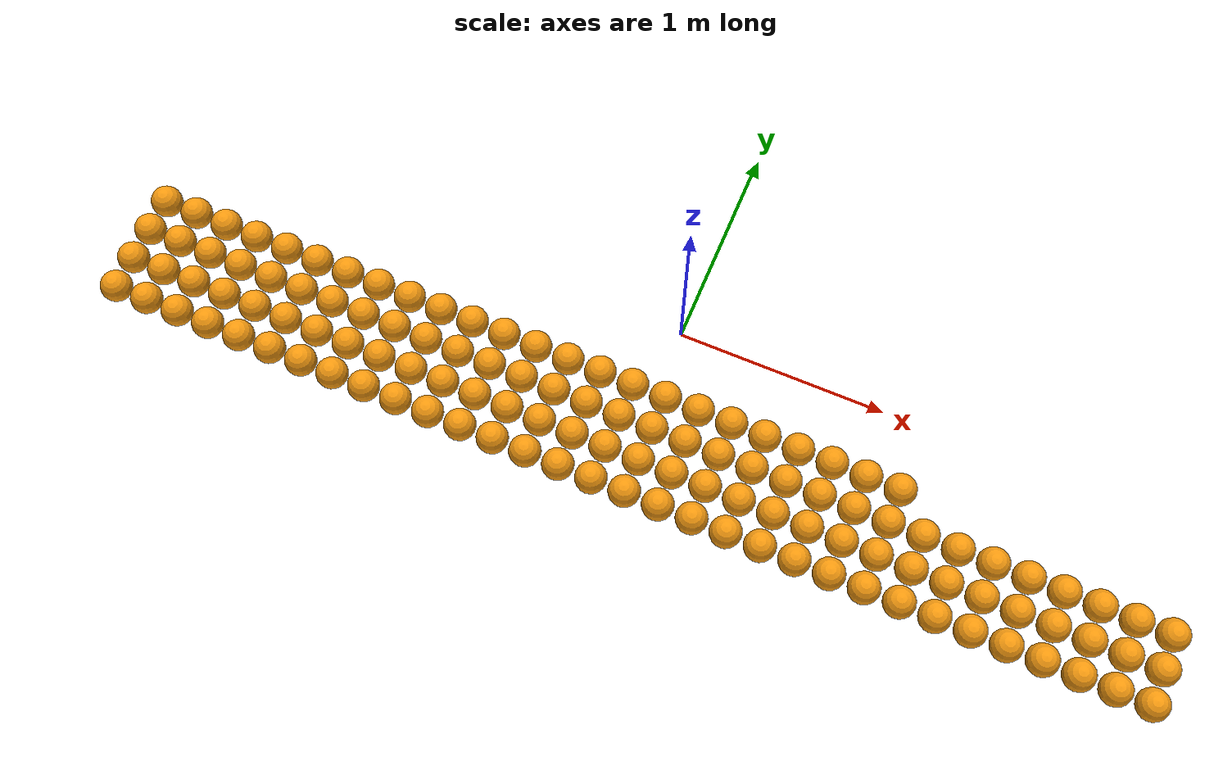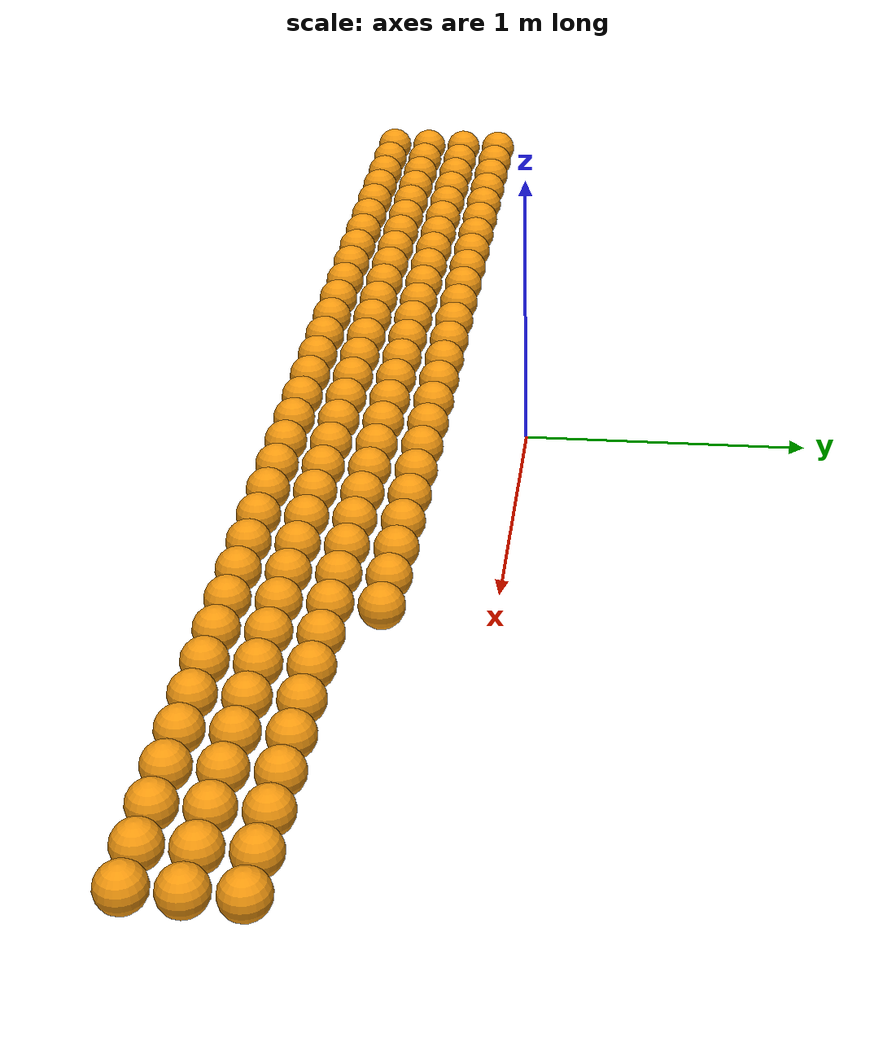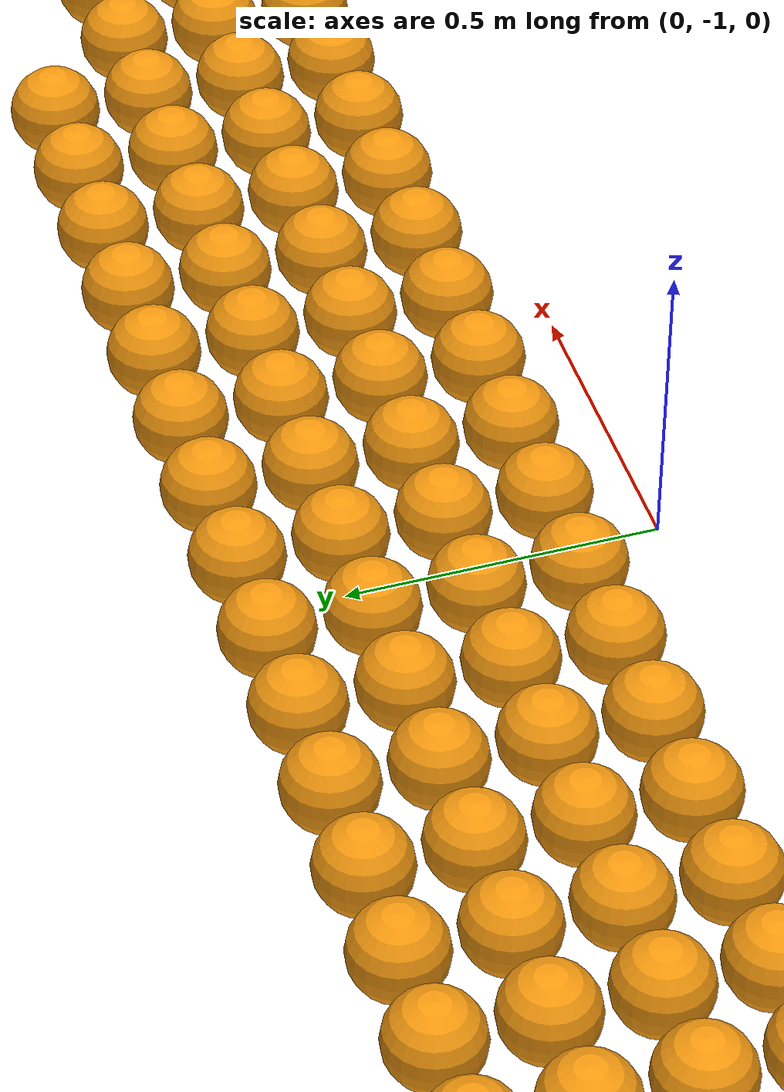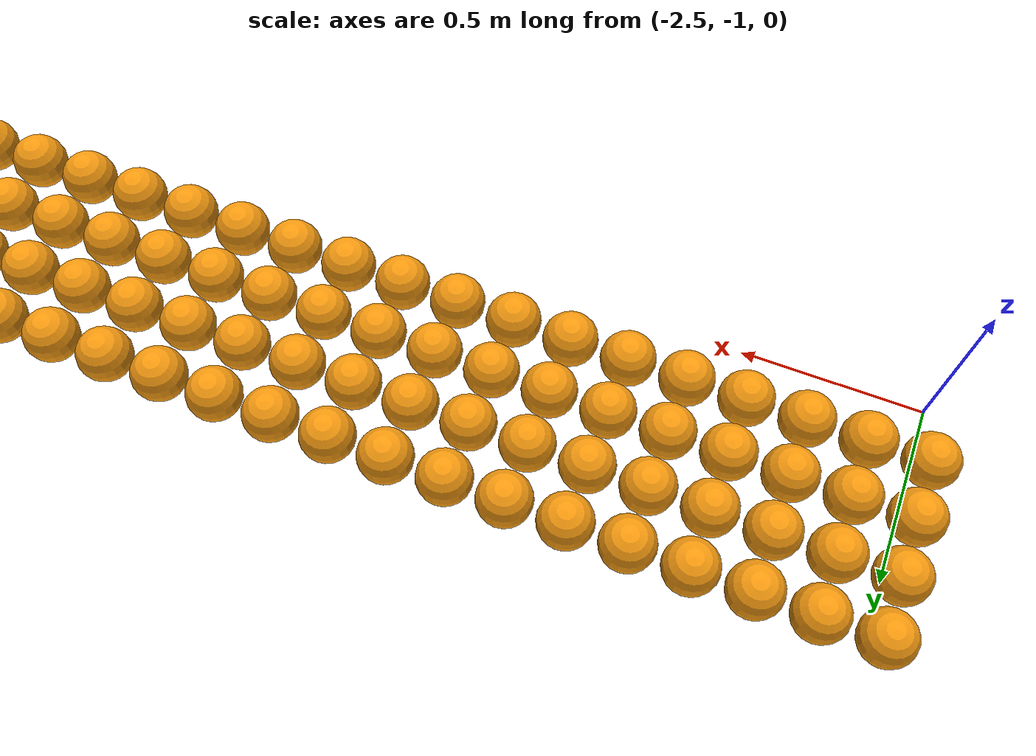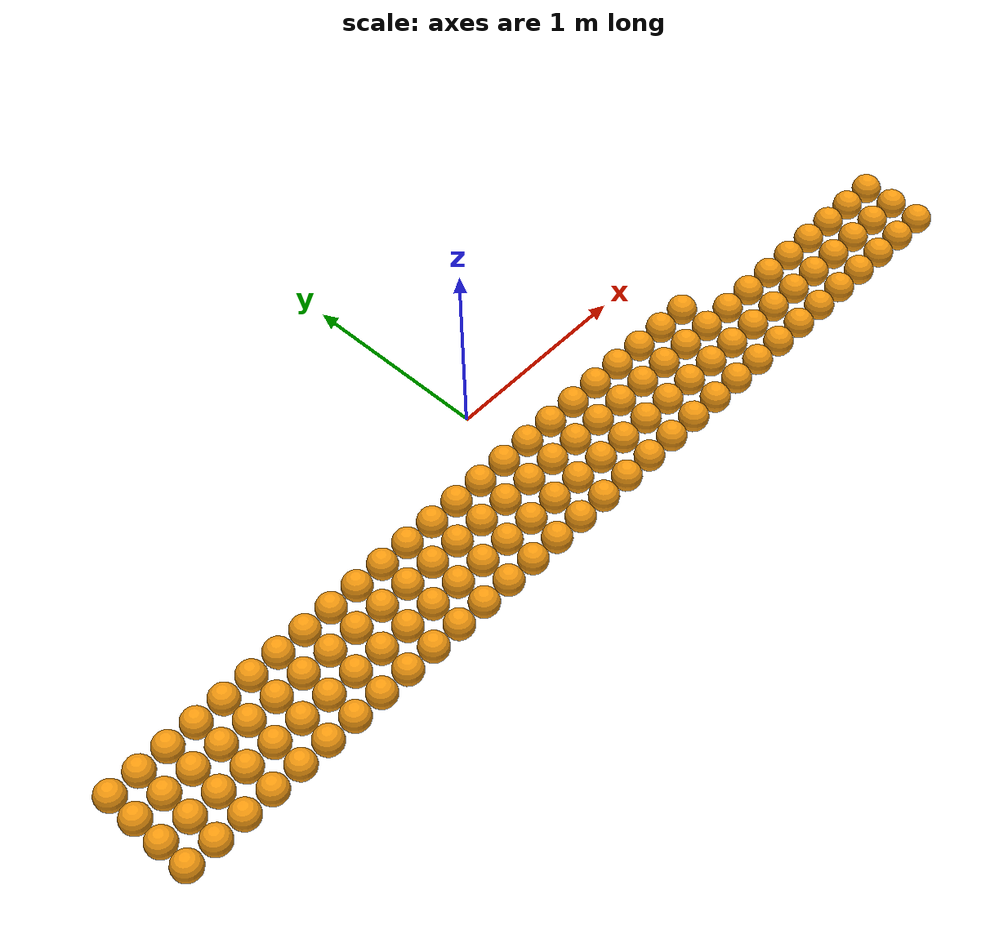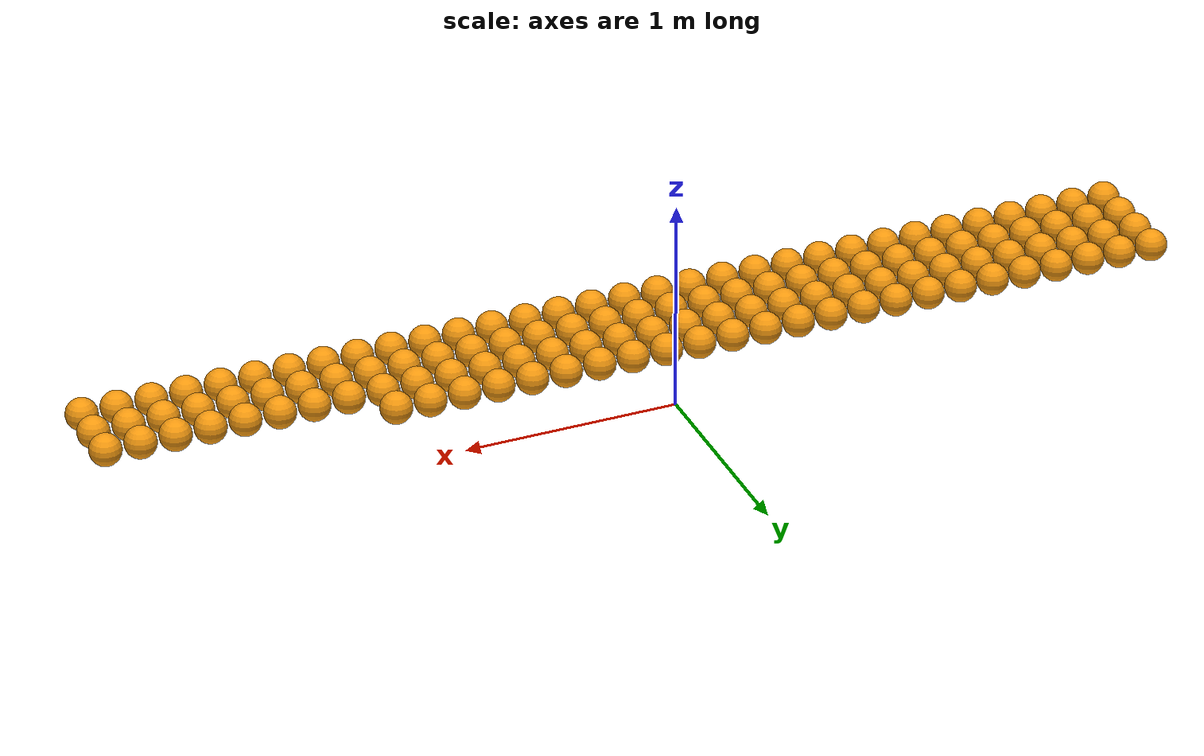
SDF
<?xml version="1.0" ?>
<sdf version="1.11">
  <world name="mars">
    <physics name="250hz" type="ignored">
      <max_step_size>0.004</max_step_size><real_time_factor>0</real_time_factor>
    </physics>
    <plugin filename="gz-sim-physics-system" name="gz::sim::systems::Physics"/>
    <plugin filename="gz-sim-scene-broadcaster-system" name="gz::sim::systems::SceneBroadcaster"/>
    <gravity>0 0 -9.8</gravity>
    <light type="directional" name="sun"><pose>0 0 10 0 0 0</pose>
      <diffuse>0.8 0.8 0.8 1</diffuse><direction>-0.5 0.1 -0.9</direction></light>
    <model name="ground_plane"><static>true</static><link name="link">
      <collision name="collision"><geometry><plane><normal>0 0 1</normal></plane></geometry>
      <surface><friction><ode><mu>0.9</mu><mu2>0.9</mu2></ode></friction></surface></collision>
    </link></model>
    <include><uri>model://fuel</uri><name>fuel_0</name><pose>-2.5340 -0.8340 0.0750 0 0 0</pose></include>
    <include><uri>model://fuel</uri><name>fuel_1</name><pose>-2.3720 -0.8340 0.0750 0 0 0</pose></include>
    <include><uri>model://fuel</uri><name>fuel_2</name><pose>-2.2100 -0.8340 0.0750 0 0 0</pose></include>
    <include><uri>model://fuel</uri><name>fuel_3</name><pose>-2.0480 -0.8340 0.0750 0 0 0</pose></include>
    <include><uri>model://fuel</uri><name>fuel_4</name><pose>-1.8860 -0.8340 0.0750 0 0 0</pose></include>
    <include><uri>model://fuel</uri><name>fuel_5</name><pose>-1.7240 -0.8340 0.0750 0 0 0</pose></include>
    <include><uri>model://fuel</uri><name>fuel_6</name><pose>-1.5620 -0.8340 0.0750 0 0 0</pose></include>
    <include><uri>model://fuel</uri><name>fuel_7</name><pose>-1.4000 -0.8340 0.0750 0 0 0</pose></include>
    <include><uri>model://fuel</uri><name>fuel_8</name><pose>-1.2380 -0.8340 0.0750 0 0 0</pose></include>
    <include><uri>model://fuel</uri><name>fuel_9</name><pose>-1.0760 -0.8340 0.0750 0 0 0</pose></include>
    <include><uri>model://fuel</uri><name>fuel_10</name><pose>-0.9140 -0.8340 0.0750 0 0 0</pose></include>
    <include><uri>model://fuel</uri><name>fuel_11</name><pose>-0.7520 -0.8340 0.0750 0 0 0</pose></include>
    <include><uri>model://fuel</uri><name>fuel_12</name><pose>-0.5900 -0.8340 0.0750 0 0 0</pose></include>
    <include><uri>model://fuel</uri><name>fuel_13</name><pose>-0.4280 -0.8340 0.0750 0 0 0</pose></include>
    <include><uri>model://fuel</uri><name>fuel_14</name><pose>-0.2660 -0.8340 0.0750 0 0 0</pose></include>
    <include><uri>model://fuel</uri><name>fuel_15</name><pose>-0.1040 -0.8340 0.0750 0 0 0</pose></include>
    <include><uri>model://fuel</uri><name>fuel_16</name><pose>0.0580 -0.8340 0.0750 0 0 0</pose></include>
    <include><uri>model://fuel</uri><name>fuel_17</name><pose>0.2200 -0.8340 0.0750 0 0 0</pose></include>
    <include><uri>model://fuel</uri><name>fuel_18</name><pose>0.3820 -0.8340 0.0750 0 0 0</pose></include>
    <include><uri>model://fuel</uri><name>fuel_19</name><pose>0.5440 -0.8340 0.0750 0 0 0</pose></include>
    <include><uri>model://fuel</uri><name>fuel_20</name><pose>0.7060 -0.8340 0.0750 0 0 0</pose></include>
    <include><uri>model://fuel</uri><name>fuel_21</name><pose>0.8680 -0.8340 0.0750 0 0 0</pose></include>
    <include><uri>model://fuel</uri><name>fuel_22</name><pose>1.0300 -0.8340 0.0750 0 0 0</pose></include>
    <include><uri>model://fuel</uri><name>fuel_23</name><pose>1.1920 -0.8340 0.0750 0 0 0</pose></include>
    <include><uri>model://fuel</uri><name>fuel_24</name><pose>1.3540 -0.8340 0.0750 0 0 0</pose></include>
    <include><uri>model://fuel</uri><name>fuel_25</name><pose>1.5160 -0.8340 0.0750 0 0 0</pose></include>
    <include><uri>model://fuel</uri><name>fuel_26</name><pose>1.6780 -0.8340 0.0750 0 0 0</pose></include>
    <include><uri>model://fuel</uri><name>fuel_27</name><pose>1.8400 -0.8340 0.0750 0 0 0</pose></include>
    <include><uri>model://fuel</uri><name>fuel_28</name><pose>2.0020 -0.8340 0.0750 0 0 0</pose></include>
    <include><uri>model://fuel</uri><name>fuel_29</name><pose>2.1640 -0.8340 0.0750 0 0 0</pose></include>
    <include><uri>model://fuel</uri><name>fuel_30</name><pose>2.3260 -0.8340 0.0750 0 0 0</pose></include>
    <include><uri>model://fuel</uri><name>fuel_31</name><pose>2.4880 -0.8340 0.0750 0 0 0</pose></include>
    <include><uri>model://fuel</uri><name>fuel_32</name><pose>-2.5340 -0.6720 0.0750 0 0 0</pose></include>
    <include><uri>model://fuel</uri><name>fuel_33</name><pose>-2.3720 -0.6720 0.0750 0 0 0</pose></include>
    <include><uri>model://fuel</uri><name>fuel_34</name><pose>-2.2100 -0.6720 0.0750 0 0 0</pose></include>
    <include><uri>model://fuel</uri><name>fuel_35</name><pose>-2.0480 -0.6720 0.0750 0 0 0</pose></include>
    <include><uri>model://fuel</uri><name>fuel_36</name><pose>-1.8860 -0.6720 0.0750 0 0 0</pose></include>
    <include><uri>model://fuel</uri><name>fuel_37</name><pose>-1.7240 -0.6720 0.0750 0 0 0</pose></include>
    <include><uri>model://fuel</uri><name>fuel_38</name><pose>-1.5620 -0.6720 0.0750 0 0 0</pose></include>
    <include><uri>model://fuel</uri><name>fuel_39</name><pose>-1.4000 -0.6720 0.0750 0 0 0</pose></include>
    <include><uri>model://fuel</uri><name>fuel_40</name><pose>-1.2380 -0.6720 0.0750 0 0 0</pose></include>
    <include><uri>model://fuel</uri><name>fuel_41</name><pose>-1.0760 -0.6720 0.0750 0 0 0</pose></include>
    <include><uri>model://fuel</uri><name>fuel_42</name><pose>-0.9140 -0.6720 0.0750 0 0 0</pose></include>
    <include><uri>model://fuel</uri><name>fuel_43</name><pose>-0.7520 -0.6720 0.0750 0 0 0</pose></include>
    <include><uri>model://fuel</uri><name>fuel_44</name><pose>-0.5900 -0.6720 0.0750 0 0 0</pose></include>
    <include><uri>model://fuel</uri><name>fuel_45</name><pose>-0.4280 -0.6720 0.0750 0 0 0</pose></include>
    <include><uri>model://fuel</uri><name>fuel_46</name><pose>-0.2660 -0.6720 0.0750 0 0 0</pose></include>
    <include><uri>model://fuel</uri><name>fuel_47</name><pose>-0.1040 -0.6720 0.0750 0 0 0</pose></include>
    <include><uri>model://fuel</uri><name>fuel_48</name><pose>0.0580 -0.6720 0.0750 0 0 0</pose></include>
    <include><uri>model://fuel</uri><name>fuel_49</name><pose>0.2200 -0.6720 0.0750 0 0 0</pose></include>
    <include><uri>model://fuel</uri><name>fuel_50</name><pose>0.3820 -0.6720 0.0750 0 0 0</pose></include>
    <include><uri>model://fuel</uri><name>fuel_51</name><pose>0.5440 -0.6720 0.0750 0 0 0</pose></include>
    <include><uri>model://fuel</uri><name>fuel_52</name><pose>0.7060 -0.6720 0.0750 0 0 0</pose></include>
    <include><uri>model://fuel</uri><name>fuel_53</name><pose>0.8680 -0.6720 0.0750 0 0 0</pose></include>
    <include><uri>model://fuel</uri><name>fuel_54</name><pose>1.0300 -0.6720 0.0750 0 0 0</pose></include>
    <include><uri>model://fuel</uri><name>fuel_55</name><pose>1.1920 -0.6720 0.0750 0 0 0</pose></include>
    <include><uri>model://fuel</uri><name>fuel_56</name><pose>1.3540 -0.6720 0.0750 0 0 0</pose></include>
    <include><uri>model://fuel</uri><name>fuel_57</name><pose>1.5160 -0.6720 0.0750 0 0 0</pose></include>
    <include><uri>model://fuel</uri><name>fuel_58</name><pose>1.6780 -0.6720 0.0750 0 0 0</pose></include>
    <include><uri>model://fuel</uri><name>fuel_59</name><pose>1.8400 -0.6720 0.0750 0 0 0</pose></include>
    <include><uri>model://fuel</uri><name>fuel_60</name><pose>2.0020 -0.6720 0.0750 0 0 0</pose></include>
    <include><uri>model://fuel</uri><name>fuel_61</name><pose>2.1640 -0.6720 0.0750 0 0 0</pose></include>
    <include><uri>model://fuel</uri><name>fuel_62</name><pose>2.3260 -0.6720 0.0750 0 0 0</pose></include>
    <include><uri>model://fuel</uri><name>fuel_63</name><pose>2.4880 -0.6720 0.0750 0 0 0</pose></include>
    <include><uri>model://fuel</uri><name>fuel_64</name><pose>-2.5340 -0.5100 0.0750 0 0 0</pose></include>
    <include><uri>model://fuel</uri><name>fuel_65</name><pose>-2.3720 -0.5100 0.0750 0 0 0</pose></include>
    <include><uri>model://fuel</uri><name>fuel_66</name><pose>-2.2100 -0.5100 0.0750 0 0 0</pose></include>
    <include><uri>model://fuel</uri><name>fuel_67</name><pose>-2.0480 -0.5100 0.0750 0 0 0</pose></include>
    <include><uri>model://fuel</uri><name>fuel_68</name><pose>-1.8860 -0.5100 0.0750 0 0 0</pose></include>
    <include><uri>model://fuel</uri><name>fuel_69</name><pose>-1.7240 -0.5100 0.0750 0 0 0</pose></include>
    <include><uri>model://fuel</uri><name>fuel_70</name><pose>-1.5620 -0.5100 0.0750 0 0 0</pose></include>
    <include><uri>model://fuel</uri><name>fuel_71</name><pose>-1.4000 -0.5100 0.0750 0 0 0</pose></include>
    <include><uri>model://fuel</uri><name>fuel_72</name><pose>-1.2380 -0.5100 0.0750 0 0 0</pose></include>
    <include><uri>model://fuel</uri><name>fuel_73</name><pose>-1.0760 -0.5100 0.0750 0 0 0</pose></include>
    <include><uri>model://fuel</uri><name>fuel_74</name><pose>-0.9140 -0.5100 0.0750 0 0 0</pose></include>
    <include><uri>model://fuel</uri><name>fuel_75</name><pose>-0.7520 -0.5100 0.0750 0 0 0</pose></include>
    <include><uri>model://fuel</uri><name>fuel_76</name><pose>-0.5900 -0.5100 0.0750 0 0 0</pose></include>
    <include><uri>model://fuel</uri><name>fuel_77</name><pose>-0.4280 -0.5100 0.0750 0 0 0</pose></include>
    <include><uri>model://fuel</uri><name>fuel_78</name><pose>-0.2660 -0.5100 0.0750 0 0 0</pose></include>
    <include><uri>model://fuel</uri><name>fuel_79</name><pose>-0.1040 -0.5100 0.0750 0 0 0</pose></include>
    <include><uri>model://fuel</uri><name>fuel_80</name><pose>0.0580 -0.5100 0.0750 0 0 0</pose></include>
    <include><uri>model://fuel</uri><name>fuel_81</name><pose>0.2200 -0.5100 0.0750 0 0 0</pose></include>
    <include><uri>model://fuel</uri><name>fuel_82</name><pose>0.3820 -0.5100 0.0750 0 0 0</pose></include>
    <include><uri>model://fuel</uri><name>fuel_83</name><pose>0.5440 -0.5100 0.0750 0 0 0</pose></include>
    <include><uri>model://fuel</uri><name>fuel_84</name><pose>0.7060 -0.5100 0.0750 0 0 0</pose></include>
    <include><uri>model://fuel</uri><name>fuel_85</name><pose>0.8680 -0.5100 0.0750 0 0 0</pose></include>
    <include><uri>model://fuel</uri><name>fuel_86</name><pose>1.0300 -0.5100 0.0750 0 0 0</pose></include>
    <include><uri>model://fuel</uri><name>fuel_87</name><pose>1.1920 -0.5100 0.0750 0 0 0</pose></include>
    <include><uri>model://fuel</uri><name>fuel_88</name><pose>1.3540 -0.5100 0.0750 0 0 0</pose></include>
    <include><uri>model://fuel</uri><name>fuel_89</name><pose>1.5160 -0.5100 0.0750 0 0 0</pose></include>
    <include><uri>model://fuel</uri><name>fuel_90</name><pose>1.6780 -0.5100 0.0750 0 0 0</pose></include>
    <include><uri>model://fuel</uri><name>fuel_91</name><pose>1.8400 -0.5100 0.0750 0 0 0</pose></include>
    <include><uri>model://fuel</uri><name>fuel_92</name><pose>2.0020 -0.5100 0.0750 0 0 0</pose></include>
    <include><uri>model://fuel</uri><name>fuel_93</name><pose>2.1640 -0.5100 0.0750 0 0 0</pose></include>
    <include><uri>model://fuel</uri><name>fuel_94</name><pose>2.3260 -0.5100 0.0750 0 0 0</pose></include>
    <include><uri>model://fuel</uri><name>fuel_95</name><pose>2.4880 -0.5100 0.0750 0 0 0</pose></include>
    <include><uri>model://fuel</uri><name>fuel_96</name><pose>-2.5340 -0.3480 0.0750 0 0 0</pose></include>
    <include><uri>model://fuel</uri><name>fuel_97</name><pose>-2.3720 -0.3480 0.0750 0 0 0</pose></include>
    <include><uri>model://fuel</uri><name>fuel_98</name><pose>-2.2100 -0.3480 0.0750 0 0 0</pose></include>
    <include><uri>model://fuel</uri><name>fuel_99</name><pose>-2.0480 -0.3480 0.0750 0 0 0</pose></include>
    <include><uri>model://fuel</uri><name>fuel_100</name><pose>-1.8860 -0.3480 0.0750 0 0 0</pose></include>
    <include><uri>model://fuel</uri><name>fuel_101</name><pose>-1.7240 -0.3480 0.0750 0 0 0</pose></include>
    <include><uri>model://fuel</uri><name>fuel_102</name><pose>-1.5620 -0.3480 0.0750 0 0 0</pose></include>
    <include><uri>model://fuel</uri><name>fuel_103</name><pose>-1.4000 -0.3480 0.0750 0 0 0</pose></include>
    <include><uri>model://fuel</uri><name>fuel_104</name><pose>-1.2380 -0.3480 0.0750 0 0 0</pose></include>
    <include><uri>model://fuel</uri><name>fuel_105</name><pose>-1.0760 -0.3480 0.0750 0 0 0</pose></include>
    <include><uri>model://fuel</uri><name>fuel_106</name><pose>-0.9140 -0.3480 0.0750 0 0 0</pose></include>
    <include><uri>model://fuel</uri><name>fuel_107</name><pose>-0.7520 -0.3480 0.0750 0 0 0</pose></include>
    <include><uri>model://fuel</uri><name>fuel_108</name><pose>-0.5900 -0.3480 0.0750 0 0 0</pose></include>
    <include><uri>model://fuel</uri><name>fuel_109</name><pose>-0.4280 -0.3480 0.0750 0 0 0</pose></include>
    <include><uri>model://fuel</uri><name>fuel_110</name><pose>-0.2660 -0.3480 0.0750 0 0 0</pose></include>
    <include><uri>model://fuel</uri><name>fuel_111</name><pose>-0.1040 -0.3480 0.0750 0 0 0</pose></include>
    <include><uri>model://fuel</uri><name>fuel_112</name><pose>0.0580 -0.3480 0.0750 0 0 0</pose></include>
    <include><uri>model://fuel</uri><name>fuel_113</name><pose>0.2200 -0.3480 0.0750 0 0 0</pose></include>
    <include><uri>model://fuel</uri><name>fuel_114</name><pose>0.3820 -0.3480 0.0750 0 0 0</pose></include>
    <include><uri>model://fuel</uri><name>fuel_115</name><pose>0.5440 -0.3480 0.0750 0 0 0</pose></include>
    <include><uri>model://fuel</uri><name>fuel_116</name><pose>0.7060 -0.3480 0.0750 0 0 0</pose></include>
    <include><uri>model://fuel</uri><name>fuel_117</name><pose>0.8680 -0.3480 0.0750 0 0 0</pose></include>
    <include><uri>model://fuel</uri><name>fuel_118</name><pose>1.0300 -0.3480 0.0750 0 0 0</pose></include>
    <include><uri>model://fuel</uri><name>fuel_119</name><pose>1.1920 -0.3480 0.0750 0 0 0</pose></include>
  </world>
</sdf>

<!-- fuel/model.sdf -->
<sdf version="1.11">
  <model name="fuel">
    <link name="link">

      <inertial>
        <mass>0.215</mass>
        <inertia>
          <ixx>4.8375e-4</ixx><ixy>0</ixy><ixz>0</ixz>
          <iyy>4.8375e-4</iyy><iyz>0</iyz>
          <izz>4.8375e-4</izz>
        </inertia>
      </inertial>

      <collision name="collision">
        <geometry><sphere><radius>0.075</radius></sphere></geometry>
        <surface>
          <friction>
            <ode>
              <mu>0.85</mu>
              <mu2>0.85</mu2>
            </ode>
          </friction>
        </surface>
      </collision>

      <visual name="visual">
        <geometry><sphere><radius>0.075</radius></sphere></geometry>
        <material>
          <ambient>0.38 0.24 0.02 1</ambient>
          <diffuse>0.956 0.597 0.056 1</diffuse>
          <specular>0.05 0.05 0.05 1</specular>
        </material>
      </visual>

    </link>
  </model>
</sdf>
